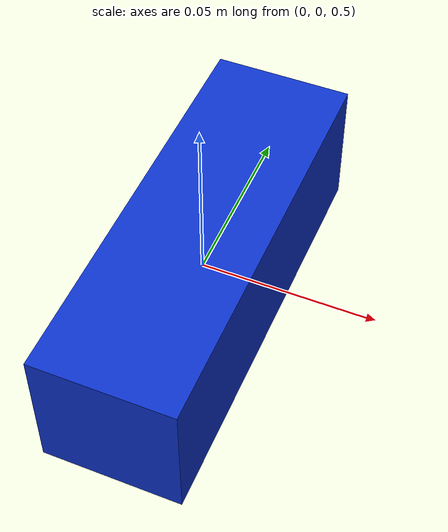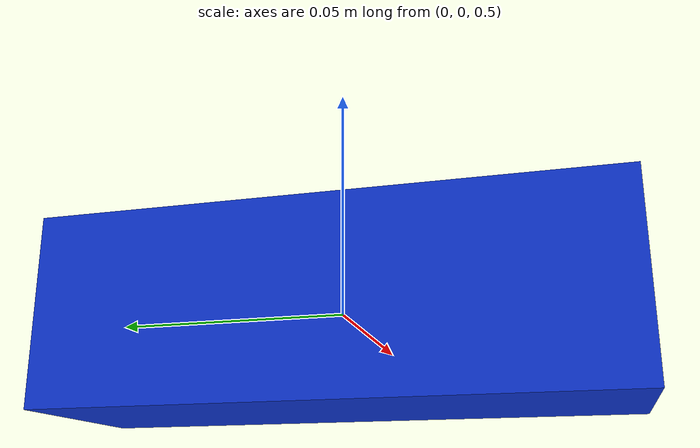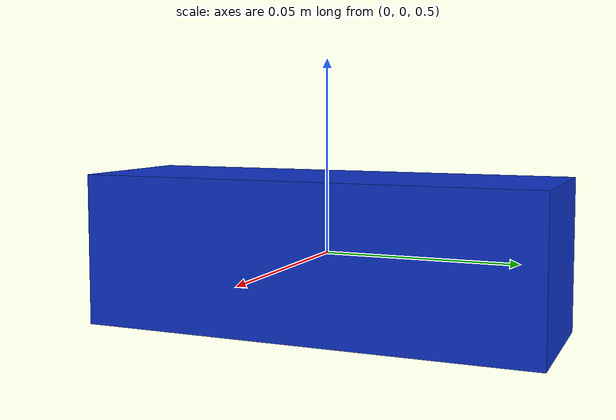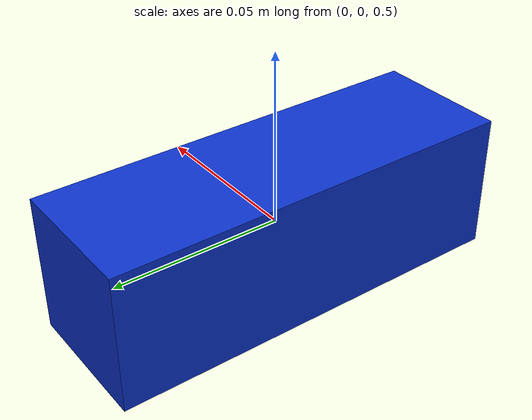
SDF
<?xml version="1.0"?>
<sdf version="1.7">
  <model name="stereo_rig">
    <static>true</static>
    <link name="stereo_left_camera_optical_frame">
      <pose>0 0 0.50 0 0 0</pose>
      <visual name="housing">
        <geometry><box><size>0.04 0.12 0.04</size></box></geometry>
        <material><ambient>0.05 0.20 0.80 1</ambient></material>
      </visual>
      <sensor name="stereo_rig" type="multicamera">
        <always_on>true</always_on>
        <update_rate>30</update_rate>
        <visualize>false</visualize>
        <camera name="left">
          <horizontal_fov>1.138626</horizontal_fov>
          <image><width>640</width><height>480</height><format>R8G8B8</format></image>
          <clip><near>0.10</near><far>4.00</far></clip>
        </camera>
        <camera name="right">
          <pose>0 -0.06 0 0 0 0</pose>
          <horizontal_fov>1.138626</horizontal_fov>
          <image><width>640</width><height>480</height><format>R8G8B8</format></image>
          <clip><near>0.10</near><far>4.00</far></clip>
        </camera>
        <plugin name="stereo_camera" filename="libgazebo_ros_camera.so">
          <ros><namespace>/stereo</namespace></ros>
          <camera_name>stereo_rig</camera_name>
          <frame_name>stereo_left_camera_optical_frame</frame_name>
          <hack_baseline>0.06</hack_baseline>
        </plugin>
      </sensor>
    </link>
  </model>
</sdf>
